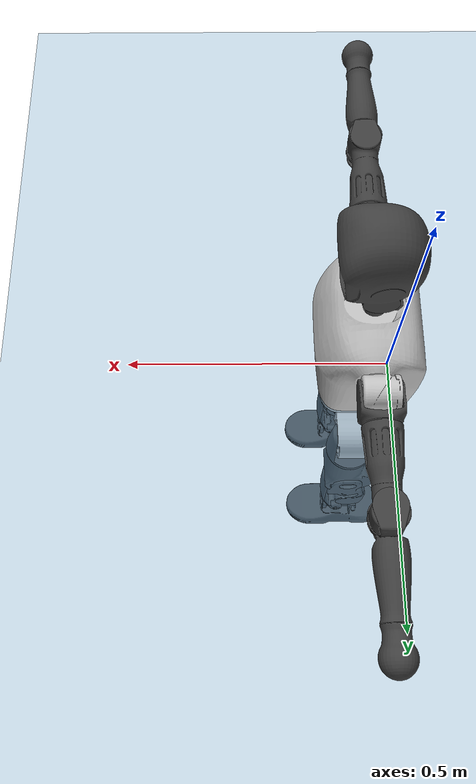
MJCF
<mujoco model="T1">
  <compiler angle="radian" assetdir="assets" balanceinertia="true" inertiafromgeom="false"/>

  <option timestep="0.005" density="1.2" viscosity="2e-05"/>

  <size nkey="1"/>

  <visual>
    <quality shadowsize="8192"/>
    <map shadowclip="0.5"/>
  </visual>

  <default>
    <default class="/">
      <joint armature="0.01" damping="0.01" frictionloss="0.1"/>
      <geom contype="0" conaffinity="0" group="1" solref="-1000 -80"/>
      <site size="0.01 0.005 0.005" group="5"/>
      <general forcelimited="true" biastype="affine" gainprm="25" biasprm="0 -25 -0.6"/>
      <default class="t1">
        <geom rgba="0.25 0.25 0.25 1"/>
        <default class="visual">
          <geom type="mesh" group="2"/>
        </default>
        <default class="collision">
          <geom group="3"/>
        </default>
        <default class="foot">
          <geom size="0.1115 0.05 0.015" type="box" condim="6" group="4" priority="1" solimp="0.015 1 0.015"/>
        </default>
        <default class="reward_collision_sphere">
          <geom group="5" rgba="1 0 0 1"/>
        </default>
      </default>
    </default>
  </default>

  <asset>
    <texture type="skybox" colorspace="auto" name="//unnamed_texture_0" builtin="gradient" rgb1="0.95 0.95 0.95" rgb2="0.95 0.95 0.95" width="100" height="600"/>
    <texture type="2d" colorspace="auto" name="texplane" builtin="checker" rgb1="0.345 0.575 0.748" rgb2="0.345 0.575 0.748" markrgb="1 1 1" width="512" height="512"/>
    <material name="MatPlane" class="/" texture="texplane" texuniform="true" texrepeat="2 2" specular="0.9"/>
    <mesh name="Trunk" class="/" file="Trunk.stl"/>
    <mesh name="H1" class="/" file="H1.stl"/>
    <mesh name="H2" class="/" file="H2.stl"/>
    <mesh name="AL1" class="/" file="AL1.stl"/>
    <mesh name="AL2" class="/" file="AL2.stl"/>
    <mesh name="AL3" class="/" file="AL3.stl"/>
    <mesh name="left_hand_link" class="/" file="left_hand_link.stl"/>
    <mesh name="AR1" class="/" file="AR1.stl"/>
    <mesh name="AR2" class="/" file="AR2.stl"/>
    <mesh name="AR3" class="/" file="AR3.stl"/>
    <mesh name="right_hand_link" class="/" file="right_hand_link.stl"/>
    <mesh name="Waist" class="/" file="Waist.stl"/>
    <mesh name="Hip_Pitch_Left" class="/" file="Hip_Pitch_Left.stl"/>
    <mesh name="Hip_Roll_Left" class="/" file="Hip_Roll_Left.stl"/>
    <mesh name="Hip_Yaw_Left" class="/" file="Hip_Yaw_Left.stl"/>
    <mesh name="Shank_Left" class="/" file="Shank_Left.stl"/>
    <mesh name="Ankle_Cross_Left" class="/" file="Ankle_Cross_Left.stl"/>
    <mesh name="left_foot_link" class="/" file="left_foot_link.stl"/>
    <mesh name="Hip_Pitch_Right" class="/" file="Hip_Pitch_Right.stl"/>
    <mesh name="Hip_Roll_Right" class="/" file="Hip_Roll_Right.stl"/>
    <mesh name="Hip_Yaw_Right" class="/" file="Hip_Yaw_Right.stl"/>
    <mesh name="Shank_Right" class="/" file="Shank_Right.stl"/>
    <mesh name="Ankle_Cross_Right" class="/" file="Ankle_Cross_Right.stl"/>
    <mesh name="right_foot_link" class="/" file="right_foot_link.stl"/>
  </asset>

  <worldbody>
    <geom name="floor" class="/" size="100 100 0.125" type="plane" group="0" material="MatPlane"/>
    <light name="toplight_shadow" class="/" pos="0 0 5" dir="0.0990148 0.0990148 -0.990148" type="directional" ambient="0.04 0.04 0.04" diffuse="0.55 0.55 0.55" specular="0.12 0.12 0.12"/>
    <light name="toplight_fill" class="/" pos="0 0 5" dir="0.0990148 0.0990148 -0.990148" type="directional" castshadow="false" ambient="0.04 0.04 0.04" diffuse="0.3 0.3 0.3" specular="0.08 0.08 0.08"/>
    <body name="trunk" childclass="t1" pos="0.00027063 0.00076268 -0.000121184" quat="1 1.36808e-05 -9.44635e-05 -4.09107e-05">
      <inertial pos="0.0486931 -0.0001962 0.110233" quat="0.999968 -0.000488439 -0.00797291 -0.00103387" mass="10.3677" diaginertia="0.0494691 0.0588361 0.0677266"/>
      <joint name="//unnamed_joint_0" type="free" armature="0" damping="0" frictionloss="0"/>
      <geom name="//unnamed_geom_1" class="visual" rgba="0.76 0.76 0.76 1" mesh="Trunk"/>
      <geom name="//unnamed_geom_2" class="collision" size="0.071882 0.0958426 0.143764" pos="0.0531471 0 0.125127" type="box"/>
      <geom name="//unnamed_geom_3" class="reward_collision_sphere" size="0.110219" pos="0.0531471 0 0.104272"/>
      <geom name="//unnamed_geom_4" class="reward_collision_sphere" size="0.0143764" pos="0.0531471 0.0804753 0"/>
      <geom name="//unnamed_geom_5" class="reward_collision_sphere" size="0.0143764" pos="0.0531471 -0.0804753 0"/>
      <geom name="//unnamed_geom_6" class="reward_collision_sphere" size="0.0143764" pos="0.0531471 0.101304 0.18769"/>
      <geom name="//unnamed_geom_7" class="reward_collision_sphere" size="0.0143764" pos="0.0531471 -0.101304 0.18769"/>
      <site name="imu" pos="-0.00415718 0.00238753 0.00413845" size="0.00958426"/>
      <camera name="track" pos="0 -1.89354 0" quat="0.707107 0.707107 0 0" mode="trackcom"/>
      <camera name="ego_camera" pos="0.108066 0 0.437944" quat="-0.5 -0.5 0.5 0.5"/>
      <body name="H1" pos="0.0558741 -0.000891195 0.252719" quat="1 -1.0637e-06 0.000202702 -4.70651e-05">
        <inertial pos="-0.000127888 -0.00118795 0.0592561" quat="0.763923 -0.0128716 0.00221443 0.645175" mass="0.382599" diaginertia="0.000128833 0.000167728 0.000184675"/>
        <joint name="AAHead_yaw" pos="0 0 0" axis="0.000103542 0.000991203 1" range="-1.57636 1.56402" armature="0.0100222" damping="0.00970669" frictionloss="0.0964551"/>
        <geom name="//unnamed_geom_8" class="visual" mesh="H1"/>
        <body name="H2" pos="-0.00122934 0.000116862 0.063682" quat="1 -0.000169044 -3.88577e-05 0.000198185">
          <inertial pos="0.00605879 0.000645337 0.102899" quat="0.988302 0.107885 -0.0736095 -0.0787496" mass="0.556308" diaginertia="0.00111037 0.00147256 0.00213404"/>
          <joint name="Head_pitch" pos="0 0 0" axis="0.000134184 -0.999996 -0.00286489" range="-1.22249 0.352084" armature="0.00944029" damping="0.00606253" frictionloss="0.100395"/>
          <geom name="//unnamed_geom_9" class="visual" mesh="H2"/>
          <geom name="//unnamed_geom_10" class="collision" size="0.0766741" pos="0.00885785 0 0.1147"/>
          <geom name="//unnamed_geom_11" class="reward_collision_sphere" size="0.0862584" pos="0.0177157 0 0.104272"/>
        </body>
      </body>
      <body name="AL1" pos="0.0516013 0.100714 0.227748" quat="1 -2.15596e-06 0.000447155 1.57045e-06">
        <inertial pos="-0.00106856 0.0422854 -0.000277193" quat="0.504592 0.495921 -0.503915 0.495499" mass="0.463082" diaginertia="0.000743509 0.000977701 0.000362101"/>
        <joint name="Left_Shoulder_Pitch" pos="0 0 0" axis="-0.00130838 0.999993 -0.00358658" stiffness="0.00157723" range="-3.3041 1.23479" armature="0.00936792" damping="0.00822987" frictionloss="0.0964462"/>
        <geom name="//unnamed_geom_12" class="visual" rgba="0.76 0.76 0.76 1" mesh="AL1"/>
        <body name="AL2" pos="0.00131965 0.0452899 0.0007788" quat="1 1.04894e-06 -1.06924e-06 6.45212e-07">
          <inertial pos="0.0025653 0.0365555 0.000203898" quat="0.487113 0.511135 -0.486688 0.514389" mass="0.142314" diaginertia="0.000220392 0.000263599 0.000218286"/>
          <joint name="Left_Shoulder_Roll" pos="0 0 0" axis="-0.999995 -0.00320652 -0.000460187" range="-1.57158 1.74452" armature="0.00947755" damping="0.00462806" frictionloss="0.0952493"/>
          <geom name="//unnamed_geom_13" class="visual" mesh="AL2"/>
          <body name="AL3" pos="0.000716457 0.0579492 -0.000290969" quat="1 9.28435e-05 1.50471e-05 6.38885e-05">
            <inertial pos="0.000681344 0.0808762 -0.000345331" quat="0.706403 0.707807 -0.000169782 0.00209244" mass="0.895104" diaginertia="0.00691423 0.00968442 0.000752206"/>
            <joint name="Left_Elbow_Pitch" pos="0 0 0" axis="0.000641146 -0.999999 0.00100097" range="-2.27504 2.25963" armature="0.009611" damping="0.0141517" frictionloss="0.0984603"/>
            <geom name="//unnamed_geom_14" class="visual" mesh="AL3"/>
            <geom name="//unnamed_geom_15" class="collision" size="0.0287528 0.071882" pos="0 0.0473384 0" quat="0.707105 0.707108 0 0" type="cylinder"/>
            <geom name="//unnamed_geom_16" class="reward_collision_sphere" size="0.0345033"/>
            <body name="left_hand_link" pos="0.00051993 0.138695 -0.000369339" quat="1 -7.67407e-05 1.65233e-05 -0.000158328">
              <inertial pos="-2.02594e-05 0.104749 0.000723082" quat="0.707934 0.706278 4.0131e-05 -0.000108158" mass="0.287665" diaginertia="0.00442702 0.0061732 0.000263234"/>
              <joint name="Left_Elbow_Yaw" pos="0 0 0" axis="-0.00291967 -0.000520092 0.999996" stiffness="0.00231859" range="-2.43898 -0.0064959" armature="0.00910696" damping="0.00848677" frictionloss="0.0956004"/>
              <geom name="//unnamed_geom_17" class="visual" mesh="left_hand_link"/>
              <geom name="//unnamed_geom_18" class="collision" size="0.0287528 0.0838623" pos="0 0.12308 0" quat="0.707105 0.707108 0 0" type="cylinder"/>
              <geom name="//unnamed_geom_19" class="reward_collision_sphere" size="0.0479213"/>
              <geom name="//unnamed_geom_20" class="reward_collision_sphere" size="0.0335449" pos="0 0.104145 0"/>
              <geom name="//unnamed_geom_21" class="reward_collision_sphere" size="0.0335449" pos="0 0.203555 0"/>
            </body>
          </body>
        </body>
      </body>
      <body name="AR1" pos="0.0503396 -0.101018 0.227898" quat="1 -9.92404e-05 0.000234768 0.000321545">
        <inertial pos="-0.000892675 -0.0421761 -0.000663303" quat="0.50403 0.495844 -0.503763 0.496301" mass="0.469307" diaginertia="0.000755186 0.000991532 0.000362169"/>
        <joint name="Right_Shoulder_Pitch" pos="0 0 0" axis="-0.00240824 -0.999992 0.00310186" range="-1.24459 3.3104" armature="0.00956214" damping="0.00652458" frictionloss="0.0984863"/>
        <geom name="//unnamed_geom_22" class="visual" rgba="0.76 0.76 0.76 1" mesh="AR1"/>
        <body name="AR2" pos="-0.000488789 -0.0441763 -7.36872e-05" quat="1 -2.70788e-06 2.2697e-05 2.88873e-05">
          <inertial pos="0.00365997 -0.0359114 5.42295e-05" quat="0.509407 0.488411 -0.514855 0.486707" mass="0.142317" diaginertia="0.000220741 0.000262735 0.000219835"/>
          <joint name="Right_Shoulder_Roll" pos="0 0 0" axis="-0.999949 -0.00906045 0.00441894" range="-1.72817 1.58435" armature="0.00961695" damping="0.00767073" frictionloss="0.0950671"/>
          <geom name="//unnamed_geom_23" class="visual" mesh="AR2"/>
          <body name="AR3" pos="0.000584215 -0.057352 0.000293109" quat="1 -1.71173e-05 2.04649e-05 -1.00205e-05">
            <inertial pos="0.000538682 -0.0811563 -0.000621437" quat="0.707045 0.707165 -0.00201149 -0.000674949" mass="0.901156" diaginertia="0.00714659 0.0099334 0.000783492"/>
            <joint name="Right_Elbow_Pitch" pos="0 0 0" axis="0.00263208 0.999988 0.004116" range="-2.2682 2.24622" armature="0.00959734" damping="0.00632095" frictionloss="0.0922963"/>
            <geom name="//unnamed_geom_24" class="visual" mesh="AR3"/>
            <geom name="//unnamed_geom_25" class="collision" size="0.0287528 0.071882" pos="0 -0.0473384 0" quat="0.707105 0.707108 0 0" type="cylinder"/>
            <geom name="//unnamed_geom_26" class="reward_collision_sphere" size="0.0345033"/>
            <body name="right_hand_link" pos="0.000619197 -0.138242 -0.000498206" quat="1 -3.50235e-06 7.2345e-05 -7.3921e-05">
              <inertial pos="0.000137851 -0.103783 0.00118326" quat="0.70622 0.707993 0.00039448 0.000214014" mass="0.286002" diaginertia="0.00434878 0.00619144 0.000263114"/>
              <joint name="Right_Elbow_Yaw" pos="0 0 0" axis="0.00019291 -0.000141992 1" range="0.00162003 2.44174" armature="0.00966496" damping="0.00823155" frictionloss="0.0953301"/>
              <geom name="//unnamed_geom_27" class="visual" mesh="right_hand_link"/>
              <geom name="//unnamed_geom_28" class="collision" size="0.0287528 0.0838623" pos="0 -0.12308 0" quat="0.707105 0.707108 0 0" type="cylinder"/>
              <geom name="//unnamed_geom_29" class="reward_collision_sphere" size="0.0479213"/>
              <geom name="//unnamed_geom_30" class="reward_collision_sphere" size="0.0335449" pos="0 -0.104145 0"/>
              <geom name="//unnamed_geom_31" class="reward_collision_sphere" size="0.0335449" pos="0 -0.203555 0"/>
            </body>
          </body>
        </body>
      </body>
      <body name="Waist" pos="0.0561354 -0.00145694 -0.121044" quat="1 -0.000232506 1.07418e-06 -0.000100998">
        <inertial pos="0.00180922 -0.00107964 0.00747762" quat="0.983335 0.00150175 -0.181703 0.00590381" mass="2.3098" diaginertia="0.00295177 0.00412037 0.00596095"/>
        <joint name="Waist" pos="0 0 0" axis="0.00135558 0.000414471 0.999999" range="-1.55859 1.57935" armature="0.00954572" damping="0.00369058" frictionloss="0.0916152"/>
        <geom name="//unnamed_geom_32" class="visual" mesh="Waist"/>
        <body name="Hip_Pitch_Left" pos="-0.000331603 0.100821 0.000266098" quat="1 0.0001486 0.000255708 8.66751e-05">
          <inertial pos="0.000934276 -0.00717475 -0.019019" quat="0.975056 0.221477 0.0145364 0.00154763" mass="0.904415" diaginertia="0.000992518 0.00111996 0.00155858"/>
          <joint name="Left_Hip_Pitch" pos="0 0 0" axis="-0.000547027 0.999997 0.00257355" range="-1.79093 1.56744" armature="0.00941587" damping="0.00905378" frictionloss="0.0962045"/>
          <geom name="//unnamed_geom_33" class="visual" rgba="0.76 0.76 0.76 1" mesh="Hip_Pitch_Left"/>
          <body name="Hip_Roll_Left" pos="0.000908936 -0.0005608 -0.0206784" quat="1 0.000111526 -0.000115341 -0.000250655">
            <inertial pos="0.00085602 -0.000210417 -0.0557053" quat="0.707568 -0.00616787 -0.00620397 0.706591" mass="0.34278" diaginertia="0.000945111 0.00115309 0.000630374"/>
            <joint name="Left_Hip_Roll" pos="0 0 0" axis="-0.999998 -0.000826394 0.00166044" range="-1.55957 0.206893" armature="0.00982008" damping="0.00978533" frictionloss="0.0960593"/>
            <geom name="//unnamed_geom_34" class="visual" mesh="Hip_Roll_Left"/>
            <geom name="//unnamed_geom_35" class="reward_collision_sphere" size="0.0527134"/>
            <body name="Hip_Yaw_Left" pos="0.000592322 -0.000336669 -0.0846945" quat="1 3.03516e-06 -6.49836e-06 -2.38534e-06">
              <inertial pos="-0.0052115 -0.000368634 -0.0932377" quat="0.696878 -0.0342344 -0.0328068 0.715621" mass="1.90284" diaginertia="0.0139067 0.0189515 0.003136"/>
              <joint name="Left_Hip_Yaw" pos="0 0 0" axis="-0.000159658 0.00160323 -0.999999" range="-1.01686 1.02669" armature="0.00912403" damping="0.00134944" frictionloss="0.0955295"/>
              <geom name="//unnamed_geom_36" class="visual" mesh="Hip_Yaw_Left"/>
              <geom name="//unnamed_geom_37" class="collision" size="0.0479213 0.0766741" type="cylinder"/>
              <body name="Shank_Left" pos="-0.0118735 0.000110898 -0.140607" quat="1 0.000151372 -0.000270177 -9.56203e-05">
                <inertial pos="-0.00501791 0.000335399 -0.12934" quat="0.997429 0.00130474 -0.0259675 0.0667833" mass="1.5417" diaginertia="0.0190843 0.0265109 0.00234032"/>
                <joint name="Left_Knee_Pitch" pos="0 0 0" axis="-0.0010115 0.999999 -0.000779327" range="-0.0203786 2.33622" armature="0.00968345" damping="0.0136275" frictionloss="0.0949293"/>
                <geom name="//unnamed_geom_38" class="visual" mesh="Shank_Left"/>
                <geom name="//unnamed_geom_39" class="collision" size="0.0479213 0.071882" pos="0 0 -0.125127" type="cylinder"/>
                <geom name="//unnamed_geom_40" class="reward_collision_sphere" size="0.0622977"/>
                <body name="Ankle_Cross_Left" pos="0.000780717 0.000241094 -0.29194" quat="1 3.87294e-05 5.54062e-05 -6.73446e-05">
                  <inertial pos="-0.00335562 0.000396704 -0.00824897" quat="0.443144 0.551076 0.551121 0.44295" mass="0.0647815" diaginertia="1.56389e-05 1.93949e-05 1.39662e-05"/>
                  <joint name="Left_Ankle_Pitch" pos="0 0 0" axis="0.000429532 0.999996 0.00262056" range="-0.852818 0.358279" armature="0.00964831" damping="0.00720759" frictionloss="0.0916115"/>
                  <geom name="//unnamed_geom_41" class="visual" mesh="Ankle_Cross_Left"/>
                  <body name="left_foot_link" pos="-0.000298097 -0.000606049 -0.01221" quat="1 -0.000302503 -0.000177475 -5.54527e-06">
                    <inertial pos="-0.000415295 0.000454814 -0.00923383" quat="-0.00394101 0.621892 -0.000444631 0.783093" mass="0.612143" diaginertia="0.00146038 0.00183191 0.00268921"/>
                    <joint name="Left_Ankle_Roll" pos="0 0 0" axis="-0.999999 0.000923361 -0.000939389" range="-0.441911 0.434435" armature="0.00914216" damping="0.00798884" frictionloss="0.0951734"/>
                    <geom name="//unnamed_geom_42" class="visual" mesh="left_foot_link"/>
                    <geom name="left_foot" class="foot" size="0.100913 0.0499674 0.0145719" pos="0.00885785 0 -0.0156409"/>
                    <geom name="//unnamed_geom_44" class="reward_collision_sphere" size="0.0498382" pos="0.00885785 0 -0.0156409"/>
                    <geom name="//unnamed_geom_45" class="reward_collision_sphere" size="0.0287528" pos="0.0841496 -0.0217757 -0.0156409"/>
                    <geom name="//unnamed_geom_46" class="reward_collision_sphere" size="0.0287528" pos="-0.062005 -0.0217757 -0.0156409"/>
                    <site name="left_foot" class="foot" pos="0.00885785 0 -0.0156409" size="0.00958426"/>
                  </body>
                </body>
              </body>
            </body>
          </body>
        </body>
        <body name="Hip_Pitch_Right" pos="-0.000579041 -0.100214 -0.00016964" quat="1 0.000156657 -0.000289087 -0.000284137">
          <inertial pos="0.000320398 0.00788241 -0.0196549" quat="0.973514 -0.228107 0.0147965 -0.0042232" mass="0.896618" diaginertia="0.000983468 0.00110945 0.00151885"/>
          <joint name="Right_Hip_Pitch" pos="0 0 0" axis="-4.09193e-05 -1 0.00081831" stiffness="0.00179689" range="-1.56885 1.79789" armature="0.00914955" damping="0.00863918" frictionloss="0.0980809"/>
          <geom name="//unnamed_geom_47" class="visual" rgba="0.76 0.76 0.76 1" mesh="Hip_Pitch_Right"/>
          <body name="Hip_Roll_Right" pos="0.000433355 -0.00028904 -0.0204111" quat="1 -2.21299e-05 -3.58247e-05 -4.60053e-05">
            <inertial pos="0.00144655 -0.000387302 -0.0567724" quat="0.706213 -0.00678824 -0.00570712 0.707944" mass="0.336195" diaginertia="0.00094002 0.00113248 0.0006259"/>
            <joint name="Right_Hip_Roll" pos="0 0 0" axis="-1 -0.000946551 8.75939e-05" range="-0.201776 1.55593" armature="0.00982707" damping="0.00372176" frictionloss="0.0937784"/>
            <geom name="//unnamed_geom_48" class="visual" mesh="Hip_Roll_Right"/>
            <geom name="//unnamed_geom_49" class="reward_collision_sphere" size="0.0527134"/>
            <body name="Hip_Yaw_Right" pos="0.000926692 0.000862481 -0.0859951" quat="1 -0.000242721 -0.000250617 -0.000326555">
              <inertial pos="-0.00634733 0.000650703 -0.0940099" quat="0.711995 -0.0343009 -0.0348713 0.700478" mass="1.9013" diaginertia="0.0139322 0.0190492 0.00317369"/>
              <joint name="Right_Hip_Yaw" pos="0 0 0" axis="0.000362631 -0.00022024 -1" range="-1.00649 1.00221" armature="0.00990617" damping="0.00341853" frictionloss="0.0949636"/>
              <geom name="//unnamed_geom_50" class="visual" mesh="Hip_Yaw_Right"/>
              <geom name="//unnamed_geom_51" class="collision" size="0.0479213 0.0766741" type="cylinder"/>
              <body name="Shank_Right" pos="-0.0112624 -0.000835237 -0.139177" quat="1 -0.00013699 -0.000287272 -0.000357147">
                <inertial pos="-0.0060536 -0.00045607 -0.127537" quat="0.999317 -0.000469158 -0.0230158 -0.0289219" mass="1.59381" diaginertia="0.0191263 0.0266619 0.00240622"/>
                <joint name="Right_Knee_Pitch" pos="0 0 0" axis="-0.00150223 -0.999992 0.00369149" range="-2.34229 -0.0209801" armature="0.00964556" damping="0.00874473" frictionloss="0.0973589"/>
                <geom name="//unnamed_geom_52" class="visual" mesh="Shank_Right"/>
                <geom name="//unnamed_geom_53" class="collision" size="0.0479213 0.071882" pos="0 0 -0.125127" type="cylinder"/>
                <geom name="//unnamed_geom_54" class="reward_collision_sphere" size="0.0622977"/>
                <body name="Ankle_Cross_Right" pos="-0.00143955 -0.000730872 -0.29216" quat="1 8.46854e-05 0.000135422 3.79495e-05">
                  <inertial pos="-0.00326547 -0.000145147 -0.008203" quat="0.443121 0.550938 0.55113 0.443133" mass="0.0641359" diaginertia="1.56029e-05 1.95002e-05 1.40918e-05"/>
                  <joint name="Right_Ankle_Pitch" pos="0 0 0" axis="0.00432657 -0.99999 0.00110706" range="-0.370456 0.868565" armature="0.00942185" damping="0.00767344" frictionloss="0.0941834"/>
                  <geom name="//unnamed_geom_55" class="visual" mesh="Ankle_Cross_Right"/>
                  <body name="right_foot_link" pos="-0.000269402 -0.000742712 -0.0131472" quat="1 3.26108e-05 -4.06251e-05 5.78604e-06">
                    <inertial pos="7.43443e-05 -0.000517321 -0.00946332" quat="-0.00235727 0.619146 0.0019634 0.78527" mass="0.607559" diaginertia="0.00145561 0.00180486 0.00268067"/>
                    <joint name="Right_Ankle_Roll" pos="0 0 0" axis="-0.999999 -0.000951746 0.00066282" stiffness="9.99193e-06" range="-0.448883 0.456634" armature="0.009421" damping="0.00638457" frictionloss="0.0930643"/>
                    <geom name="//unnamed_geom_56" class="visual" mesh="right_foot_link"/>
                    <geom name="right_foot" class="foot" size="0.0984947 0.0455815 0.0143394" pos="0.00885785 0 -0.0156409"/>
                    <geom name="//unnamed_geom_58" class="reward_collision_sphere" size="0.038337"/>
                    <geom name="//unnamed_geom_59" class="reward_collision_sphere" size="0.0287528" pos="0.00885785 0 -0.0156409"/>
                    <geom name="//unnamed_geom_60" class="reward_collision_sphere" size="0.0287528" pos="0.0841496 0.0217757 -0.0156409"/>
                    <geom name="//unnamed_geom_61" class="reward_collision_sphere" size="0.0287528" pos="-0.062005 0.0217757 -0.0156409"/>
                    <site name="right_foot" class="foot" pos="0.00885785 0 -0.0156409" size="0.00958426"/>
                  </body>
                </body>
              </body>
            </body>
          </body>
        </body>
      </body>
    </body>
  </worldbody>

  <contact>
    <pair class="/" geom1="floor" geom2="left_foot" name="//unnamed_contact_0"/>
    <pair class="/" geom1="floor" geom2="right_foot" name="//unnamed_contact_1"/>
  </contact>

  <actuator>
    <general name="AAHead_yaw" class="/" joint="AAHead_yaw" forcerange="-6.67589 6.67589" gainprm="23.4593" biasprm="0 -23.4593 -0.551418"/>
    <general name="Head_pitch" class="/" joint="Head_pitch" forcerange="-6.73615 6.73615" gainprm="23.4593" biasprm="0 -23.4593 -0.551418"/>
    <general name="Left_Shoulder_Pitch" class="/" joint="Left_Shoulder_Pitch" forcerange="-16.4902 16.4902" gainprm="23.4593" biasprm="0 -23.4593 -0.551418"/>
    <general name="Left_Shoulder_Roll" class="/" joint="Left_Shoulder_Roll" forcerange="-17.0957 17.0957" gainprm="23.4593" biasprm="0 -23.4593 -0.551418"/>
    <general name="Left_Elbow_Pitch" class="/" joint="Left_Elbow_Pitch" forcerange="-17.769 17.769" gainprm="23.4593" biasprm="0 -23.4593 -0.551418"/>
    <general name="Left_Elbow_Yaw" class="/" joint="Left_Elbow_Yaw" forcerange="-17.2729 17.2729" gainprm="23.4593" biasprm="0 -23.4593 -0.551418"/>
    <general name="Right_Shoulder_Pitch" class="/" joint="Right_Shoulder_Pitch" forcerange="-17.0958 17.0958" gainprm="23.4593" biasprm="0 -23.4593 -0.551418"/>
    <general name="Right_Shoulder_Roll" class="/" joint="Right_Shoulder_Roll" forcerange="-17.2061 17.2061" gainprm="23.4593" biasprm="0 -23.4593 -0.551418"/>
    <general name="Right_Elbow_Pitch" class="/" joint="Right_Elbow_Pitch" forcerange="-17.8592 17.8592" gainprm="23.4593" biasprm="0 -23.4593 -0.551418"/>
    <general name="Right_Elbow_Yaw" class="/" joint="Right_Elbow_Yaw" forcerange="-17.7182 17.7182" gainprm="23.4593" biasprm="0 -23.4593 -0.551418"/>
    <general name="Waist" class="/" joint="Waist" forcerange="-29.7413 29.7413" gainprm="23.4593" biasprm="0 -23.4593 -0.551418"/>
    <general name="Left_Hip_Pitch" class="/" joint="Left_Hip_Pitch" forcerange="-43.4843 43.4843" gainprm="23.4593" biasprm="0 -23.4593 -0.551418"/>
    <general name="Left_Hip_Roll" class="/" joint="Left_Hip_Roll" forcerange="-29.5893 29.5893" gainprm="23.4593" biasprm="0 -23.4593 -0.551418"/>
    <general name="Left_Hip_Yaw" class="/" joint="Left_Hip_Yaw" forcerange="-29.6684 29.6684" gainprm="23.4593" biasprm="0 -23.4593 -0.551418"/>
    <general name="Left_Knee_Pitch" class="/" joint="Left_Knee_Pitch" forcerange="-56.4867 56.4867" gainprm="23.4593" biasprm="0 -23.4593 -0.551418"/>
    <general name="Left_Ankle_Pitch" class="/" joint="Left_Ankle_Pitch" forcerange="-19.4691 19.4691" gainprm="23.4593" biasprm="0 -23.4593 -0.551418"/>
    <general name="Left_Ankle_Roll" class="/" joint="Left_Ankle_Roll" forcerange="-14.4108 14.4108" gainprm="23.4593" biasprm="0 -23.4593 -0.551418"/>
    <general name="Right_Hip_Pitch" class="/" joint="Right_Hip_Pitch" forcerange="-42.7464 42.7464" gainprm="23.4593" biasprm="0 -23.4593 -0.551418"/>
    <general name="Right_Hip_Roll" class="/" joint="Right_Hip_Roll" forcerange="-28.6875 28.6875" gainprm="23.4593" biasprm="0 -23.4593 -0.551418"/>
    <general name="Right_Hip_Yaw" class="/" joint="Right_Hip_Yaw" forcerange="-29.5647 29.5647" gainprm="23.4593" biasprm="0 -23.4593 -0.551418"/>
    <general name="Right_Knee_Pitch" class="/" joint="Right_Knee_Pitch" forcerange="-59.2615 59.2615" gainprm="23.4593" biasprm="0 -23.4593 -0.551418"/>
    <general name="Right_Ankle_Pitch" class="/" joint="Right_Ankle_Pitch" forcerange="-19.3838 19.3838" gainprm="23.4593" biasprm="0 -23.4593 -0.551418"/>
    <general name="Right_Ankle_Roll" class="/" joint="Right_Ankle_Roll" forcerange="-14.1724 14.1724" gainprm="23.4593" biasprm="0 -23.4593 -0.551418"/>
  </actuator>

  <sensor>
    <gyro site="imu" name="imu_angular_velocity"/>
    <velocimeter site="imu" name="imu_linear_velocity"/>
    <framelinvel objtype="site" objname="left_foot" name="left_foot_global_linear_velocity"/>
    <framelinvel objtype="site" objname="right_foot" name="right_foot_global_linear_velocity"/>
  </sensor>

  <keyframe>
    <key name="home" qpos="0 0 0.6385 1 0 0 0 0 0 0 1.4 0 -0.4 0 -1.4 0 0.4 0 -0.4 0 0 0.8 -0.4 0 0.4 0 0 -0.8 0.4 0"/>
  </keyframe>
</mujoco>
